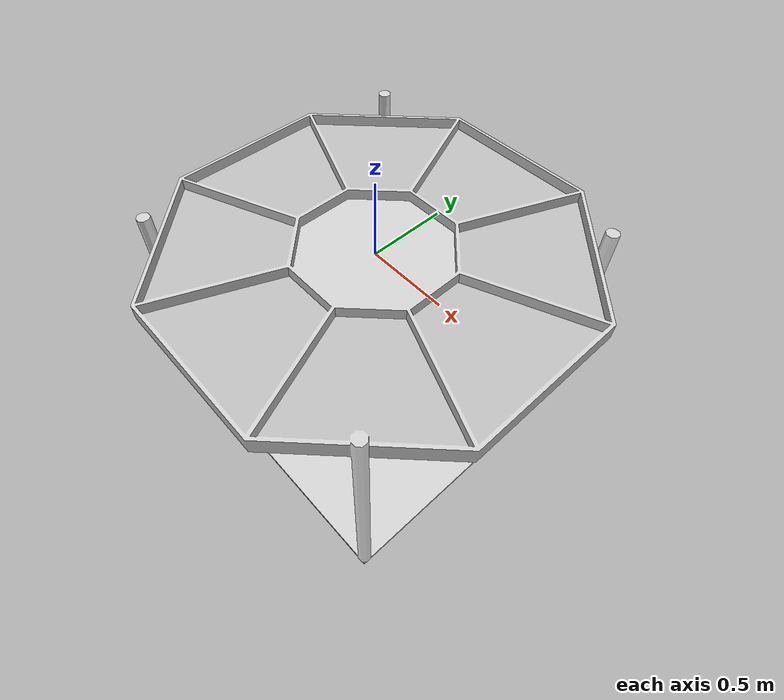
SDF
<?xml version="1.0" ?>
<sdf version="1.5">
  <model name="whirlpool_table">
    <static>true</static>
    <link name="base_link">

      <collision name="collision">
        <pose>0 0 0 0 0 0</pose>
        <geometry>
          <mesh>
            <uri>model://whirlpool_table/meshes/whirlpool_table.dae</uri>
          </mesh>
        </geometry>
      </collision>

      <visual name="visual">
        <cast_shadows>true</cast_shadows>
        <pose>0 0 0 0 0 0</pose>
        <geometry>
          <mesh>
            <uri>model://whirlpool_table/meshes/whirlpool_table.dae</uri>
          </mesh>
        </geometry>
      </visual>
    </link>
  </model>
</sdf>
